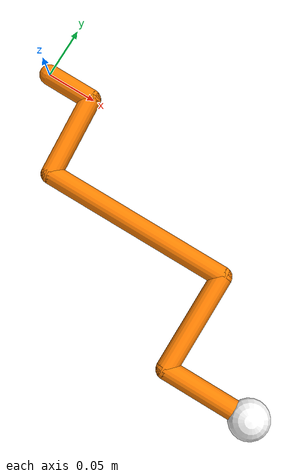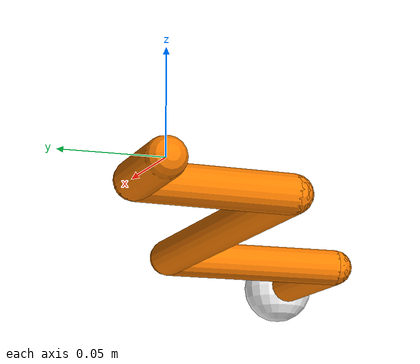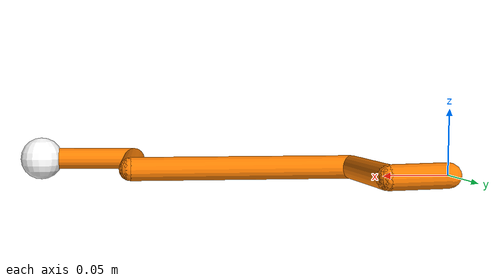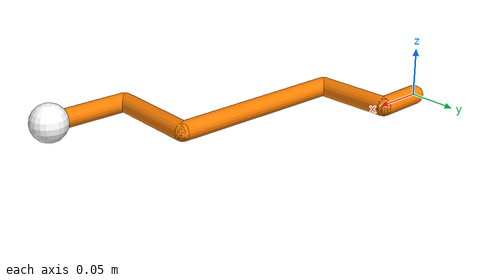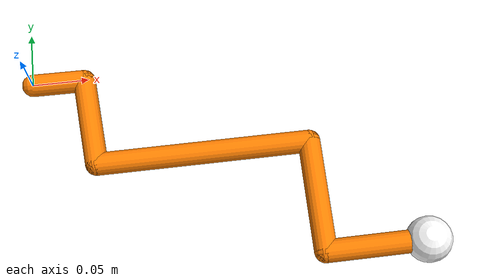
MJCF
<mujoco model="shoulder_elbow_wrist_6dof_capsules_mmfit">
  <compiler angle="degree" inertiafromgeom="true"/>
  <option gravity="0 0 -9.81" timestep="0.01"/>

  <default>
    <!-- Visual + inertial link: capsule between parent joint and child joint -->
    <default class="link">
      <geom type="capsule" size="0.01" density="1000" rgba="1 0.5 0 1"/>
    </default>

    <!-- End-effector marker -->
    <default class="marker">
      <geom type="sphere" size="0.02" rgba="1 1 1 1" contype="0" conaffinity="0"/>
    </default>
  </default>

  <worldbody>
    <body name="base" pos="0 0 0">

      <!-- Joint: SHOULDER_A -->
      <body name="link1" pos="0 0 0">
        <joint name="SHOULDER_A" type="hinge" axis="1 0 0" range="-90 90"/>

        <!-- SHOULDER_A -> SHOULDER_B
             mm: [45.987, 0.001, -1.243]  => m: [0.045987, 0.000001, -0.001243] -->
        <geom class="link" name="link1_to_link2" fromto="0 0 0  0.045987 0.000001 -0.001243"/>

        <body name="link2" pos="0.045987 0.000001 -0.001243">
          <joint name="SHOULDER_B" type="hinge" axis="1 0 0" range="-90 90"/>

          <!-- SHOULDER_B -> SHOULDER_C
               mm: [6.149, -81.077, -0.017] => m: [0.006149, -0.081077, -0.000017] -->
          <geom class="link" name="link2_to_link3" fromto="0 0 0  0.006149 -0.081077 -0.000017"/>

          <body name="link3" pos="0.006149 -0.081077 -0.000017">
            <joint name="SHOULDER_C" type="hinge" axis="0 1 0" range="-90 90"/>

            <!-- SHOULDER_C -> ELBOW_A
                 mm: [188.041, 0.027, -0.274] => m: [0.188041, 0.000027, -0.000274] -->
            <geom class="link" name="link3_to_link4" fromto="0 0 0  0.188041 0.000027 -0.000274"/>

            <body name="link4" pos="0.188041 0.000027 -0.000274">
              <joint name="ELBOW_A" type="hinge" axis="0 1 0" range="-135 0"/>

              <!-- ELBOW_A -> ELBOW_B
                   mm: [-0.276, -99.921, -0.012] => m: [-0.000276, -0.099921, -0.000012] -->
              <geom class="link" name="link4_to_link5" fromto="0 0 0  -0.000276 -0.099921 -0.000012"/>

              <body name="link5" pos="-0.000276 -0.099921 -0.000012">
                <joint name="ELBOW_B" type="hinge" axis="0 1 0" range="-90 90"/>

                <!-- ELBOW_B -> WRIST_A
                     mm: [88.415, 0.167, 0.717] => m: [0.088415, 0.000167, 0.000717] -->
                <geom class="link" name="link5_to_link6" fromto="0 0 0  0.088415 0.000167 0.000717"/>

                <body name="link6" pos="0.088415 0.000167 0.000717">
                  <joint name="WRIST_A" type="hinge" axis="1 0 0" range="-90 90"/>

                  <!-- EE marker at WRIST_A (since we excluded WRIST_B / fingers) -->
                  <body name="hand" pos="0 0 0">
                    <geom class="marker" name="ee_marker"/>
                    <site name="ee_site" pos="0 0 0" size="0.02" rgba="1 1 1 1"/>
                  </body>

                </body>
              </body>
            </body>
          </body>
        </body>
      </body>
    </body>
  </worldbody>

  <actuator>
    <position name="SHOULDER_A_pos" joint="SHOULDER_A" kp="50"/>
    <position name="SHOULDER_B_pos" joint="SHOULDER_B" kp="50"/>
    <position name="SHOULDER_C_pos" joint="SHOULDER_C" kp="50"/>
    <position name="ELBOW_A_pos"   joint="ELBOW_A"   kp="40"/>
    <position name="ELBOW_B_pos"   joint="ELBOW_B"   kp="40"/>
    <position name="WRIST_A_pos"   joint="WRIST_A"   kp="30"/>
  </actuator>
</mujoco>
